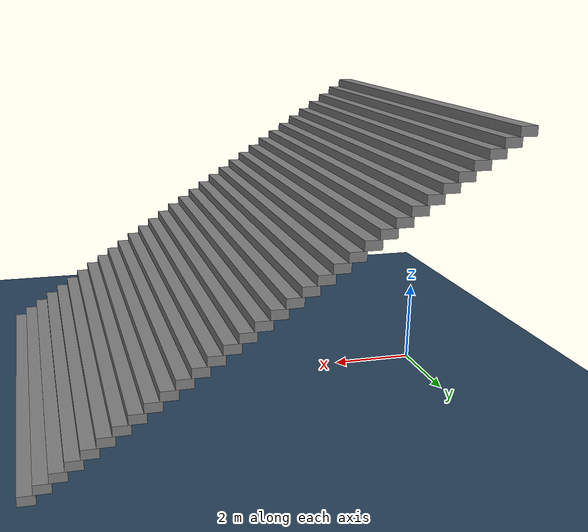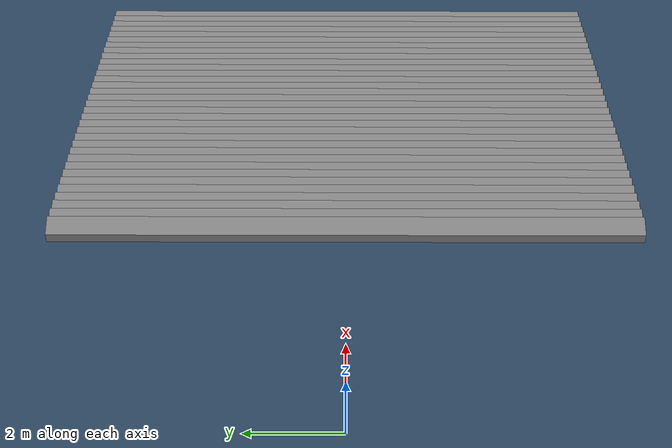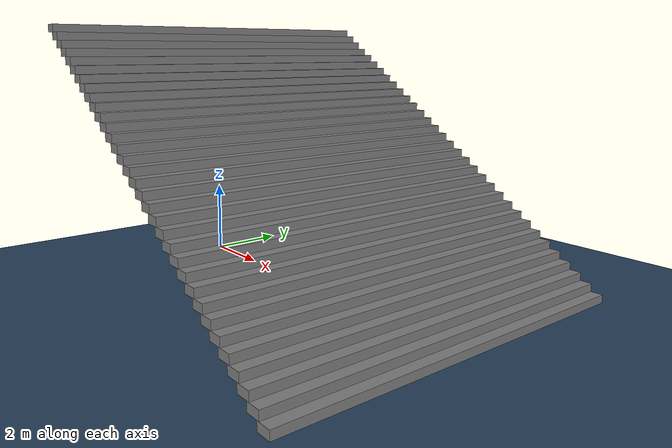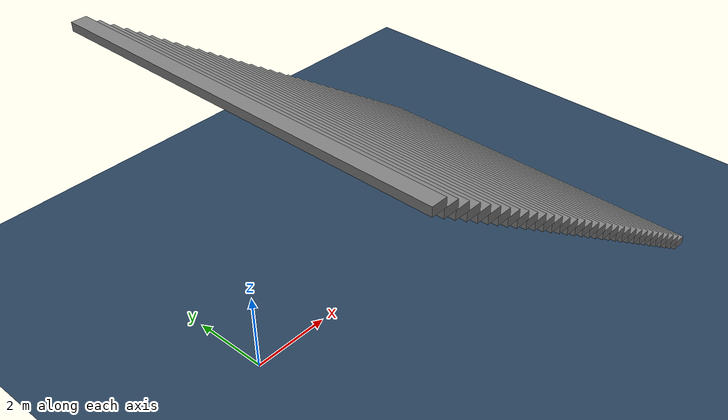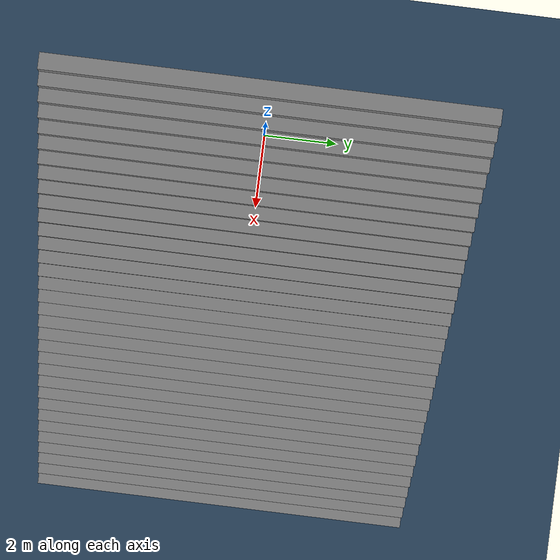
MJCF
<mujoco model="stairs_down_8">
  <!-- Terrain Type: stairs_down, Level: 8, Stairs step height: 0.2100 -->
  <statistic center="0 0 0.1" extent="0.8" />
  <visual>
    <headlight diffuse="0.6 0.6 0.6" ambient="0.3 0.3 0.3" specular="0 0 0" />
    <rgba haze="0.15 0.25 0.35 1" />
    <global azimuth="-130" elevation="-20" />
  </visual>
  <asset>
    <texture type="skybox" builtin="gradient" rgb1="0.3 0.5 0.7" rgb2="0 0 0" width="512" height="3072" />
    <texture type="2d" name="groundplane" builtin="checker" mark="edge" rgb1="0.2 0.3 0.4" rgb2="0.1 0.2 0.3" markrgb="0.8 0.8 0.8" width="300" height="300" />
    <material name="groundplane" texture="groundplane" texuniform="true" texrepeat="5 5" reflectance="0.0" />
  </asset>
  <worldbody>
    <light pos="0 0 1.5" dir="0 0 -1" directional="true" />
    <geom name="floor" size="0 0 0.05" type="plane" material="groundplane" />
    <geom pos="0.155 0.0 6.825000000000001" type="box" size="0.186 5.0 0.10500000000000001" quat="1.0 0.0 0.0 0.0" />
    <geom pos="0.46499999999999997 0.0 6.615000000000001" type="box" size="0.186 5.0 0.10500000000000001" quat="1.0 0.0 0.0 0.0" />
    <geom pos="0.7749999999999999 0.0 6.405000000000001" type="box" size="0.186 5.0 0.10500000000000001" quat="1.0 0.0 0.0 0.0" />
    <geom pos="1.085 0.0 6.195000000000001" type="box" size="0.186 5.0 0.10500000000000001" quat="1.0 0.0 0.0 0.0" />
    <geom pos="1.395 0.0 5.985000000000001" type="box" size="0.186 5.0 0.10500000000000001" quat="1.0 0.0 0.0 0.0" />
    <geom pos="1.705 0.0 5.775000000000001" type="box" size="0.186 5.0 0.10500000000000001" quat="1.0 0.0 0.0 0.0" />
    <geom pos="2.015 0.0 5.565000000000001" type="box" size="0.186 5.0 0.10500000000000001" quat="1.0 0.0 0.0 0.0" />
    <geom pos="2.325 0.0 5.355000000000001" type="box" size="0.186 5.0 0.10500000000000001" quat="1.0 0.0 0.0 0.0" />
    <geom pos="2.6350000000000002 0.0 5.145000000000001" type="box" size="0.186 5.0 0.10500000000000001" quat="1.0 0.0 0.0 0.0" />
    <geom pos="2.9450000000000003 0.0 4.935000000000001" type="box" size="0.186 5.0 0.10500000000000001" quat="1.0 0.0 0.0 0.0" />
    <geom pos="3.2550000000000003 0.0 4.725000000000001" type="box" size="0.186 5.0 0.10500000000000001" quat="1.0 0.0 0.0 0.0" />
    <geom pos="3.5650000000000004 0.0 4.5150000000000015" type="box" size="0.186 5.0 0.10500000000000001" quat="1.0 0.0 0.0 0.0" />
    <geom pos="3.8750000000000004 0.0 4.3050000000000015" type="box" size="0.186 5.0 0.10500000000000001" quat="1.0 0.0 0.0 0.0" />
    <geom pos="4.1850000000000005 0.0 4.0950000000000015" type="box" size="0.186 5.0 0.10500000000000001" quat="1.0 0.0 0.0 0.0" />
    <geom pos="4.495 0.0 3.8850000000000016" type="box" size="0.186 5.0 0.10500000000000001" quat="1.0 0.0 0.0 0.0" />
    <geom pos="4.805 0.0 3.6750000000000016" type="box" size="0.186 5.0 0.10500000000000001" quat="1.0 0.0 0.0 0.0" />
    <geom pos="5.114999999999999 0.0 3.4650000000000016" type="box" size="0.186 5.0 0.10500000000000001" quat="1.0 0.0 0.0 0.0" />
    <geom pos="5.424999999999999 0.0 3.2550000000000017" type="box" size="0.186 5.0 0.10500000000000001" quat="1.0 0.0 0.0 0.0" />
    <geom pos="5.7349999999999985 0.0 3.0450000000000017" type="box" size="0.186 5.0 0.10500000000000001" quat="1.0 0.0 0.0 0.0" />
    <geom pos="6.044999999999998 0.0 2.8350000000000017" type="box" size="0.186 5.0 0.10500000000000001" quat="1.0 0.0 0.0 0.0" />
    <geom pos="6.354999999999998 0.0 2.6250000000000018" type="box" size="0.186 5.0 0.10500000000000001" quat="1.0 0.0 0.0 0.0" />
    <geom pos="6.664999999999997 0.0 2.415000000000002" type="box" size="0.186 5.0 0.10500000000000001" quat="1.0 0.0 0.0 0.0" />
    <geom pos="6.974999999999997 0.0 2.205000000000002" type="box" size="0.186 5.0 0.10500000000000001" quat="1.0 0.0 0.0 0.0" />
    <geom pos="7.284999999999997 0.0 1.9950000000000019" type="box" size="0.186 5.0 0.10500000000000001" quat="1.0 0.0 0.0 0.0" />
    <geom pos="7.594999999999996 0.0 1.785000000000002" type="box" size="0.186 5.0 0.10500000000000001" quat="1.0 0.0 0.0 0.0" />
    <geom pos="7.904999999999996 0.0 1.575000000000002" type="box" size="0.186 5.0 0.10500000000000001" quat="1.0 0.0 0.0 0.0" />
    <geom pos="8.214999999999996 0.0 1.365000000000002" type="box" size="0.186 5.0 0.10500000000000001" quat="1.0 0.0 0.0 0.0" />
    <geom pos="8.524999999999997 0.0 1.155000000000002" type="box" size="0.186 5.0 0.10500000000000001" quat="1.0 0.0 0.0 0.0" />
    <geom pos="8.834999999999997 0.0 0.9450000000000021" type="box" size="0.186 5.0 0.10500000000000001" quat="1.0 0.0 0.0 0.0" />
    <geom pos="9.144999999999998 0.0 0.7350000000000021" type="box" size="0.186 5.0 0.10500000000000001" quat="1.0 0.0 0.0 0.0" />
    <geom pos="9.454999999999998 0.0 0.5250000000000021" type="box" size="0.186 5.0 0.10500000000000001" quat="1.0 0.0 0.0 0.0" />
    <geom pos="9.764999999999999 0.0 0.3150000000000021" type="box" size="0.186 5.0 0.10500000000000001" quat="1.0 0.0 0.0 0.0" />
    <geom pos="10.075 0.0 0.10500000000000209" type="box" size="0.186 5.0 0.10500000000000001" quat="1.0 0.0 0.0 0.0" />
  </worldbody>
</mujoco>
